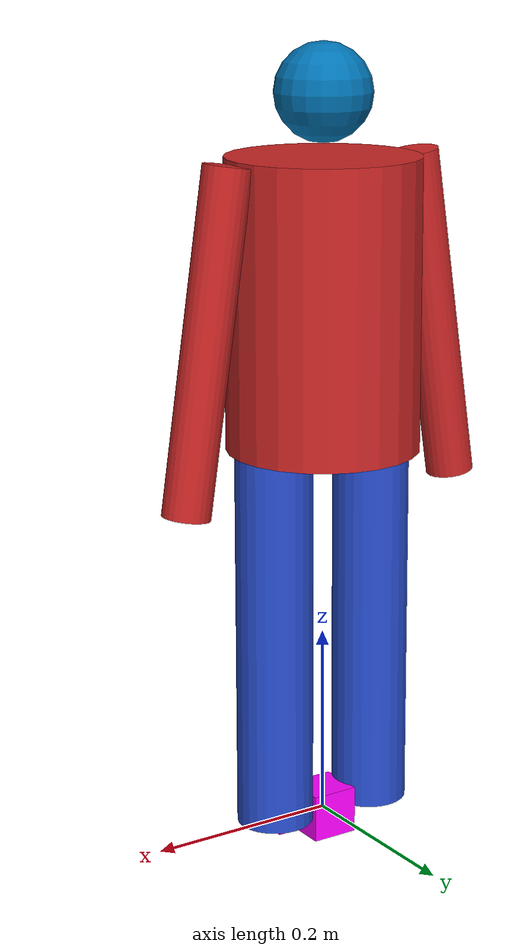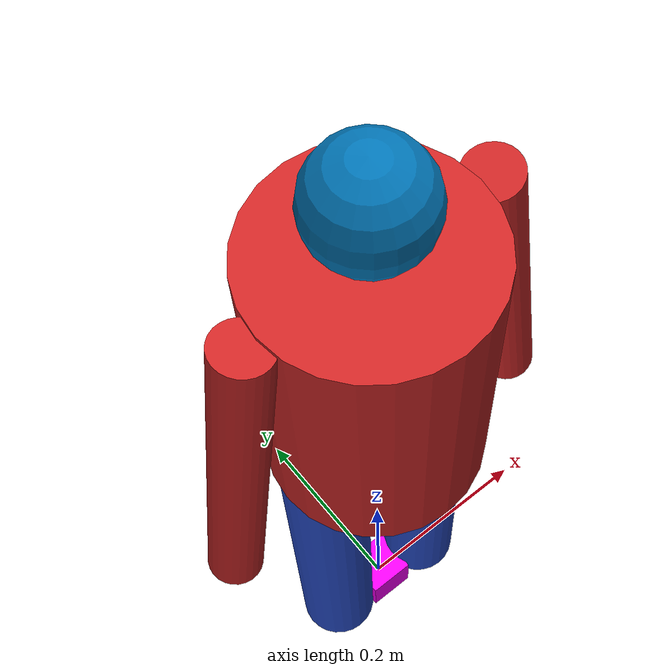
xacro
<?xml version="1.0"?>
<robot name="stoplight" xmlns:xacro="http://www.ros.org/wiki/xacro">

<xacro:arg name="pedestrian_ns" default="pedestrian_0"/>
<xacro:property name="pedestrian_ns" value="$(arg pedestrian_ns)"/>

<xacro:property name="scale" value="0.5" />

<link name="world" />
<joint name="fixed" type="fixed">
    <parent link="world"/>
    <child link="base_link"/>
</joint>

<link name="base_link">
    <visual>
        <origin xyz="0 0 0" rpy="0 0 0" />
        <geometry>
            <box size="${0.1*scale} ${0.1*scale}  ${0.1*scale} " />
        </geometry>
        <material name="Black">
            <color rgba="1 0.0 1 1.0"/>
        </material>
    </visual>
    <visual>
        <origin xyz="${0.1*scale}  0 0" rpy="0 0 0" />
        <geometry>
            <box size="${0.05*scale}  ${0.05*scale} ${0.05*scale}" />
        </geometry>
        <material name="Black">
            <color rgba="1 0.0 1 1.0"/>
        </material>
    </visual>
    <inertial>
      <origin xyz="0 0 0" rpy="0 0 0"/>
      <mass value="10000"/>
      <inertia
        ixx="10000.0" ixy="0.0" ixz="0.0"
        iyy="10000.0" iyz="0.0"
        izz="10000.0"/>
    </inertial>
</link>

<joint name="pedestrian_joint" type="prismatic">
    <origin xyz="0 0 0" rpy="0 0 0"/>
    <parent link="base_link"/>
    <child link="pedestrian_link"/>
    <axis xyz="1 0 0" />
    <limit effort="100000" velocity="1000" lower="0" upper="10"/>
</joint>

<transmission name="pedestrian_joint_transmission" type="SimpleTransmission">
  <type>transmission_interface/SimpleTransmission</type>
  <joint name="pedestrian_joint">
    <hardwareInterface>hardware_interface/EffortJointInterface</hardwareInterface>
  </joint>
  <actuator name="pedestrian_joint_motor">
    <hardwareInterface>hardware_interface/EffortJointInterface</hardwareInterface>
    <mechanicalReduction>1</mechanicalReduction>
  </actuator>
</transmission>

<xacro:macro name="vc_link" params="*origin *geometry">
    <visual>
        <xacro:insert_block name="origin" />
        <xacro:insert_block name="geometry"/>
    </visual>
    <collision>
        <xacro:insert_block name="origin" />
        <xacro:insert_block name="geometry"/>
    </collision>
</xacro:macro>

<xacro:macro name="def_mass">
    <inertial>
      <mass value="1"/>
      <inertia
        ixx="1.0" ixy="0.0" ixz="0.0"
        iyy="1.0" iyz="0.0"
        izz="1.0"/>
    </inertial>
</xacro:macro>

<xacro:property name="leg_height" value="${0.8*scale}"/>
<xacro:property name="leg_rad" value="${0.08*scale}"/>
<xacro:property name="torso_height" value="${0.6*scale}"/>
<xacro:property name="torso_rad" value="${0.2*scale}"/>
<xacro:property name="head_rad" value="${0.1*scale}"/>

<xacro:property name="arm_length" value="${0.7*scale}"/>
<xacro:property name="arm_rad" value="${0.05*scale}"/>

<link name="pedestrian_link">
    <xacro:def_mass />
</link>

<joint name="lower_joint" type="fixed">
    <origin xyz="0 0 0" rpy="0 0 0"/>
    <parent link="pedestrian_link"/>
    <child link="lower_body"/>
</joint>
<joint name="upper_joint" type="fixed">
    <origin xyz="0 0 0" rpy="0 0 0"/>
    <parent link="pedestrian_link"/>
    <child link="upper_body"/>
</joint>
<joint name="head_joint" type="fixed">
    <origin xyz="0 0 0" rpy="0 0 0"/>
    <parent link="pedestrian_link"/>
    <child link="head"/>
</joint>

<link name="lower_body">
    <xacro:def_mass />
    <xacro:vc_link>
        <origin xyz="${1.5*leg_rad} 0 ${0.5*1.01*leg_height}" rpy="0 0 0"/>
        <geometry>
            <cylinder radius="${leg_rad}" length="${leg_height}"/>
        </geometry>
    </xacro:vc_link>

    <xacro:vc_link>
        <origin xyz="${-1.5*leg_rad} 0 ${0.5*1.01*leg_height}" rpy="0 0 0"/>
        <geometry>
            <cylinder radius="${leg_rad}" length="${leg_height}"/>
        </geometry>
    </xacro:vc_link>
</link>

<link name="head">
    <xacro:def_mass />
    <xacro:vc_link>
        <origin xyz="0 0 ${torso_height + leg_height + 1.25*head_rad}" rpy="0 0 0"/>
        <geometry>
            <sphere radius="${head_rad}"/>
        </geometry>
    </xacro:vc_link>
</link>

<link name="upper_body">
    <xacro:def_mass />
    <xacro:vc_link>
        <origin xyz="0 0 ${0.5*torso_height + leg_height}" rpy="0 0 0"/>
        <geometry>
            <cylinder radius="${torso_rad}" length="${torso_height}"/>
        </geometry>
    </xacro:vc_link>

    <xacro:vc_link>
        <origin xyz="${-1.5*arm_rad - torso_rad} 0 ${torso_height + leg_height - 0.5*arm_length}" rpy="0 0.15 0"/>
        <geometry>
            <cylinder radius="${arm_rad}" length="${arm_length}"/>
        </geometry>
    </xacro:vc_link>

    <xacro:vc_link>
        <origin xyz="${1.5*arm_rad + torso_rad} 0 ${torso_height + leg_height - 0.5*arm_length}" rpy="0 -0.15 0"/>
        <geometry>
            <cylinder radius="${arm_rad}" length="${arm_length}"/>
        </geometry>
    </xacro:vc_link>

</link>

<gazebo reference="upper_body">
    <material>Gazebo/Red</material>
</gazebo>
<gazebo reference="lower_body">
    <material>Gazebo/Blue</material>
</gazebo>

<gazebo reference="base_link">
    <material>Gazebo/Black</material>
    <static>true</static>
</gazebo>

<gazebo>
  <plugin name="gazebo_ros_control" filename="libgazebo_ros_control.so">
    <robotNamespace>${pedestrian_ns}</robotNamespace>
    <legacyModeNS>false</legacyModeNS>
  </plugin>
</gazebo>

</robot>
